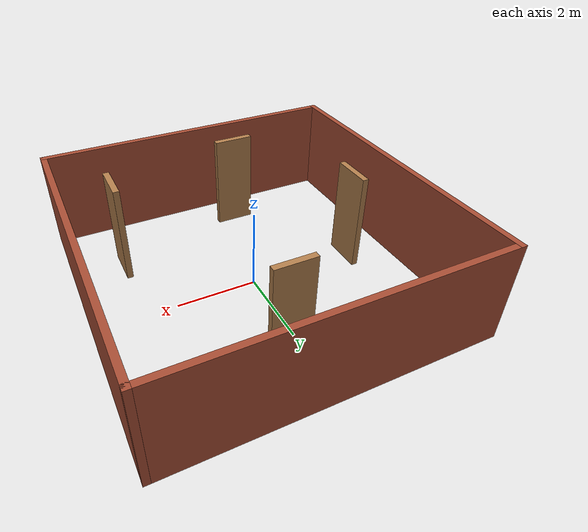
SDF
<?xml version='1.0'?>
<sdf version='1.7'>
  <model name='turtlebot3_drl_stage6'>
    <pose>0.017372 -0.031206 0 0 -0 0</pose>
    <link name='Wall_10'>
      <collision name='Wall_10_Collision'>
        <geometry>
          <box>
            <size>8 0.15 2.5</size>
          </box>
        </geometry>
        <pose>0 0 1.25 0 -0 0</pose>
      </collision>
      <visual name='Wall_10_Visual'>
        <pose>0 0 1.25 0 -0 0</pose>
        <geometry>
          <box>
            <size>8 0.15 2.5</size>
          </box>
        </geometry>
        <material>
          <script>
            <uri>file://media/materials/scripts/gazebo.material</uri>
            <name>Gazebo/Bricks</name>
          </script>
          <ambient>1 1 1 1</ambient>
        </material>
        <meta>
          <layer>0</layer>
        </meta>
      </visual>
      <pose>-3.925 0 0 0 -0 1.5708</pose>
    </link>
    <link name='Wall_12'>
      <collision name='Wall_12_Collision'>
        <geometry>
          <box>
            <size>8 0.15 2.5</size>
          </box>
        </geometry>
        <pose>0 0 1.25 0 -0 0</pose>
      </collision>
      <visual name='Wall_12_Visual'>
        <pose>0 0 1.25 0 -0 0</pose>
        <geometry>
          <box>
            <size>8 0.15 2.5</size>
          </box>
        </geometry>
        <material>
          <script>
            <uri>file://media/materials/scripts/gazebo.material</uri>
            <name>Gazebo/Bricks</name>
          </script>
          <ambient>1 1 1 1</ambient>
        </material>
        <meta>
          <layer>0</layer>
        </meta>
      </visual>
      <pose>0 -3.925 0 0 -0 0</pose>
    </link>
    <link name='Wall_13'>
      <collision name='Wall_13_Collision'>
        <geometry>
          <box>
            <size>8 0.15 2.5</size>
          </box>
        </geometry>
        <pose>0 0 1.25 0 -0 0</pose>
      </collision>
      <visual name='Wall_13_Visual'>
        <pose>0 0 1.25 0 -0 0</pose>
        <geometry>
          <box>
            <size>8 0.15 2.5</size>
          </box>
        </geometry>
        <material>
          <script>
            <uri>file://media/materials/scripts/gazebo.material</uri>
            <name>Gazebo/Bricks</name>
          </script>
          <ambient>1 1 1 1</ambient>
        </material>
        <meta>
          <layer>0</layer>
        </meta>
      </visual>
      <pose>3.925 0 0 0 -0 1.5708</pose>
    </link>
    <link name='Wall_14'>
      <collision name='Wall_14_Collision'>
        <geometry>
          <box>
            <size>8 0.15 2.5</size>
          </box>
        </geometry>
        <pose>0 0 1.25 0 -0 0</pose>
      </collision>
      <visual name='Wall_14_Visual'>
        <pose>0 0 1.25 0 -0 0</pose>
        <geometry>
          <box>
            <size>8 0.15 2.5</size>
          </box>
        </geometry>
        <material>
          <script>
            <uri>file://media/materials/scripts/gazebo.material</uri>
            <name>Gazebo/Bricks</name>
          </script>
          <ambient>1 1 1 1</ambient>
        </material>
        <meta>
          <layer>0</layer>
        </meta>
      </visual>
      <pose>0 3.925 0 0 -0 3.14159</pose>
    </link>
    <link name='Wall_17'>
      <collision name='Wall_17_Collision'>
        <geometry>
          <box>
            <size>1 0.15 2.5</size>
          </box>
        </geometry>
        <pose>0 0 1.25 0 -0 0</pose>
      </collision>
      <visual name='Wall_17_Visual'>
        <pose>0 0 1.25 0 -0 0</pose>
        <geometry>
          <box>
            <size>1 0.15 2.5</size>
          </box>
        </geometry>
        <material>
          <script>
            <uri>file://media/materials/scripts/gazebo.material</uri>
            <name>Gazebo/Wood</name>
          </script>
          <ambient>1 1 1 1</ambient>
        </material>
        <meta>
          <layer>0</layer>
        </meta>
      </visual>
      <pose>0.30478 2.4528 0 0 -0 0</pose>
    </link>
    <link name='Wall_20'>
      <collision name='Wall_20_Collision'>
        <geometry>
          <box>
            <size>1 0.15 2.5</size>
          </box>
        </geometry>
        <pose>0 0 1.25 0 -0 0</pose>
      </collision>
      <visual name='Wall_20_Visual'>
        <pose>0 0 1.25 0 -0 0</pose>
        <geometry>
          <box>
            <size>1 0.15 2.5</size>
          </box>
        </geometry>
        <material>
          <script>
            <uri>file://media/materials/scripts/gazebo.material</uri>
            <name>Gazebo/Wood</name>
          </script>
          <ambient>1 1 1 1</ambient>
        </material>
        <meta>
          <layer>0</layer>
        </meta>
      </visual>
      <pose>-0.8 -2.9 0 0 -0 0.0</pose>
    </link>
    <link name='Wall_30'>
      <collision name='Wall_30_Collision'>
        <geometry>
          <box>
            <size>1 0.15 2.5</size>
          </box>
        </geometry>
        <pose>0 0 1.25 0 -0 0</pose>
      </collision>
      <visual name='Wall_30_Visual'>
        <pose>0 0 1.25 0 -0 0</pose>
        <geometry>
          <box>
            <size>1 0.15 2.5</size>
          </box>
        </geometry>
        <material>
          <script>
            <uri>file://media/materials/scripts/gazebo.material</uri>
            <name>Gazebo/Wood</name>
          </script>
          <ambient>1 1 1 1</ambient>
        </material>
        <meta>
          <layer>0</layer>
        </meta>
      </visual>
      <pose>-2.7 0.0 0 0 -0 1.56</pose>
    </link>

    <link name='Wall_40'>
      <collision name='Wall_40_Collision'>
        <geometry>
          <box>
            <size>1 0.15 2.5</size>
          </box>
        </geometry>
        <pose>0 0 1.25 0 -0 0</pose>
      </collision>
      <visual name='Wall_40_Visual'>
        <pose>0 0 1.25 0 -0 0</pose>
        <geometry>
          <box>
            <size>1 0.15 2.5</size>
          </box>
        </geometry>
        <material>
          <script>
            <uri>file://media/materials/scripts/gazebo.material</uri>
            <name>Gazebo/Wood</name>
          </script>
          <ambient>1 1 1 1</ambient>
        </material>
        <meta>
          <layer>0</layer>
        </meta>
      </visual>
      <pose>2.7 -2.0 0 0 -0 1.5708</pose>
    </link>
    <static>1</static>
  </model>
</sdf>
